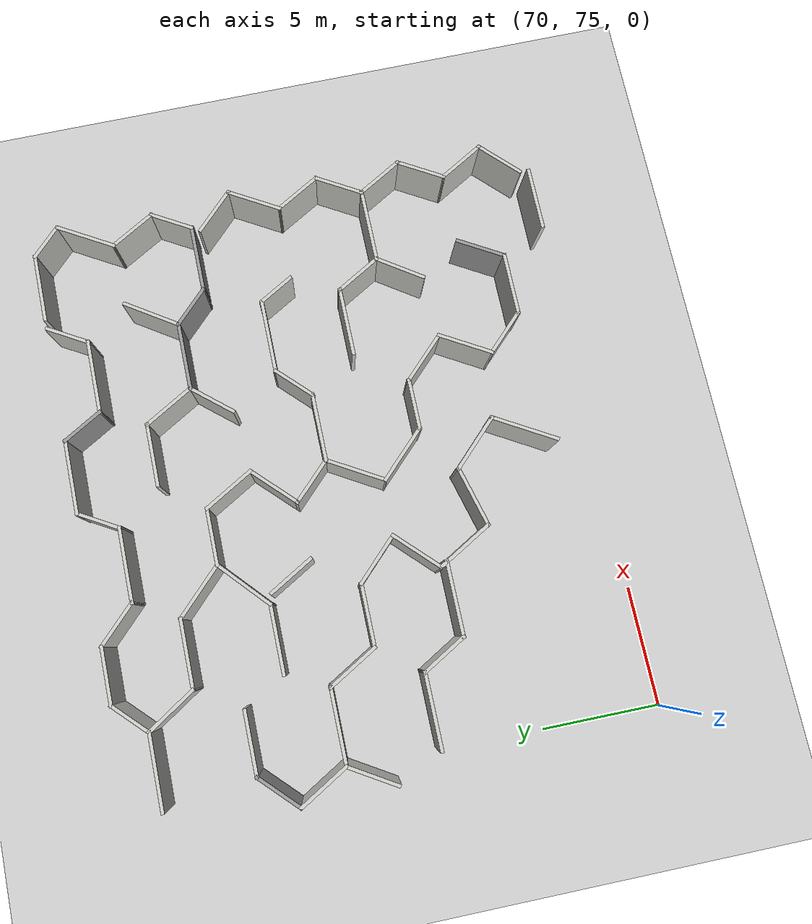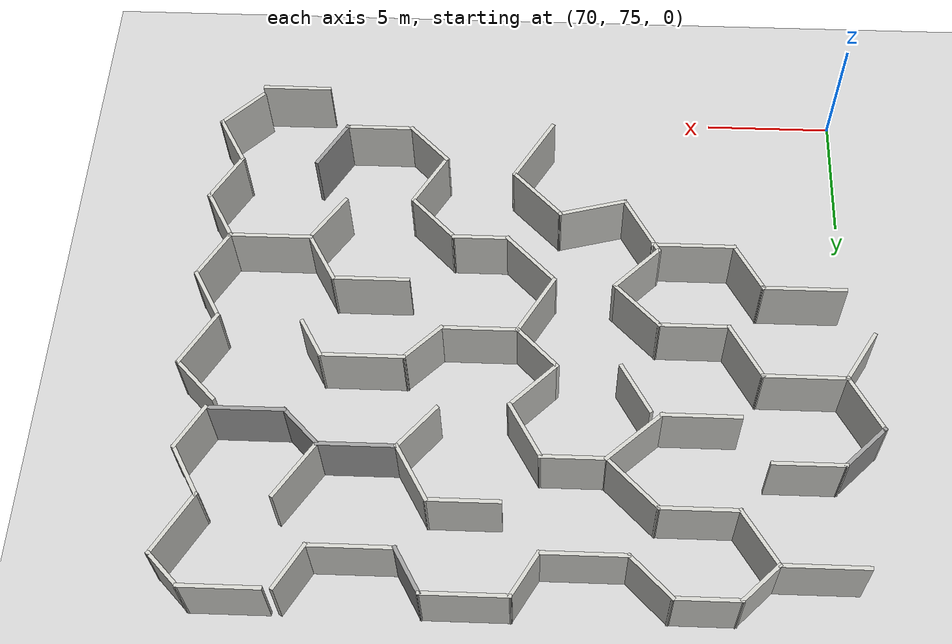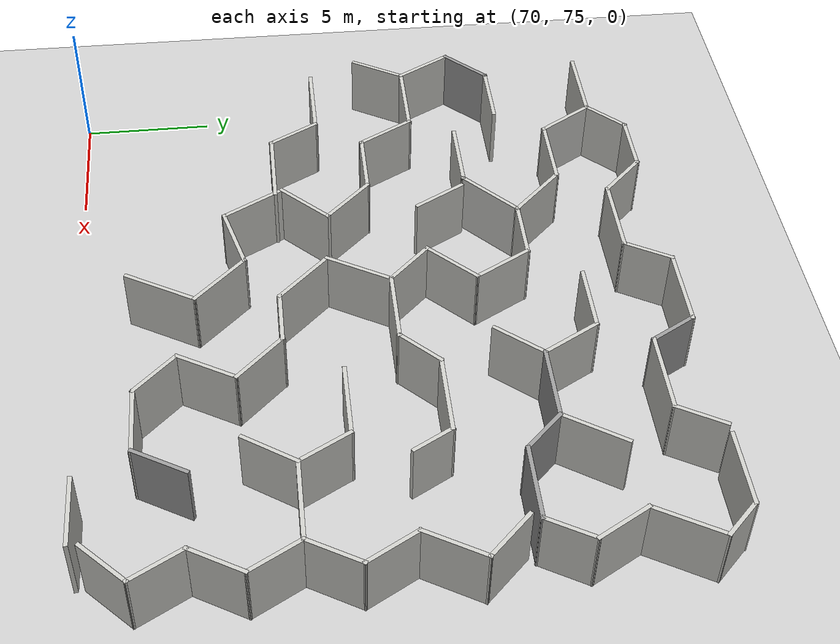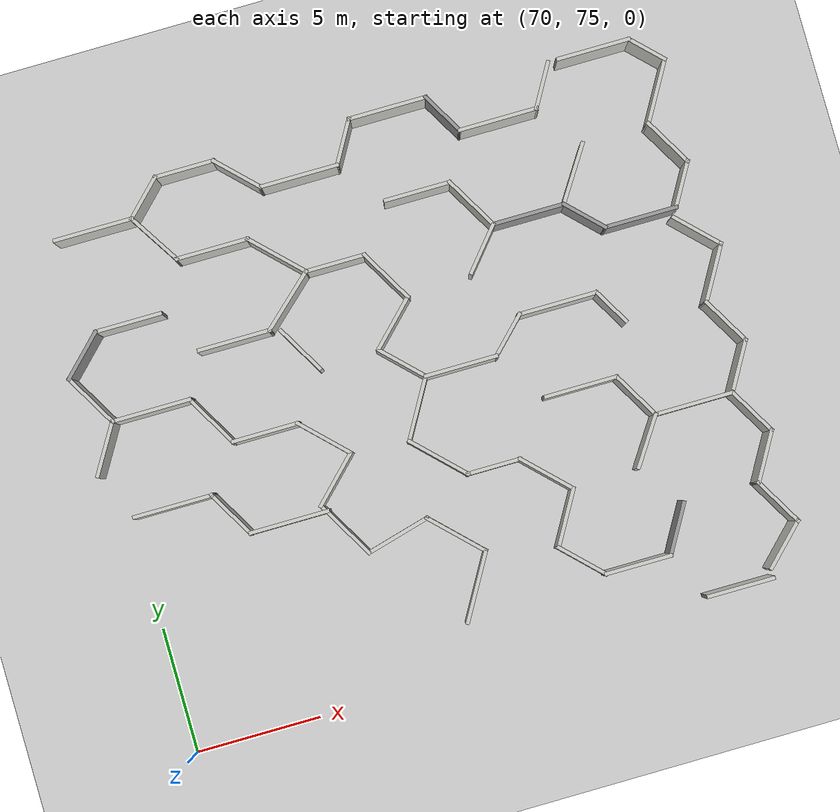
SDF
<sdf version="1.6">
 <world name="default">
  <model name="ground_plane">
   <pose>50 50 0 0 -0 0</pose>
   <static>1</static>
   <link name="link">
    <collision name="collision">
     <geometry><plane><normal>0 0 1</normal><size>100 100</size></plane></geometry>
     <surface><friction><ode><mu>100</mu><mu2>50</mu2></ode></friction></surface>
    </collision>
    <visual name="visual">
     <cast_shadows>0</cast_shadows>
     <geometry><plane><normal>0 0 1</normal><size>100 100</size></plane></geometry>
     <material>
      <script><uri>file://media/materials/scripts/gazebo.material</uri><name>Gazebo/Grey</name></script>
     </material>
    </visual>
   </link>
  </model>
  <model name="maze_1_0">
   <pose>55.5762 81.9377 0 0 -0 3.14</pose>
   <link name="Wall_100">
    <collision name="Wall_100_Collision">
     <geometry><box><size>2.75 0.15 2.5</size></box></geometry>
     <pose>0 0 1.25 0 -0 0</pose>
    </collision>
    <visual name="Wall_100_Visual">
     <pose>0 0 1.25 0 -0 0</pose>
     <geometry><box><size>2.75 0.15 2.5</size></box></geometry>
     <material>
      <script><uri>file://media/materials/scripts/gazebo.material</uri><name>Gazebo/CeilingTiled</name></script>
      <ambient>1 1 1 1</ambient>
     </material>
     <meta><layer>0</layer></meta>
    </visual>
    <pose>-22.8053 -10.8644 0 0 -0 -0.785398</pose>
   </link>
   <link name="Wall_101">
    <collision name="Wall_101_Collision">
     <geometry><box><size>3 0.15 2.5</size></box></geometry>
     <pose>0 0 1.25 0 -0 0</pose>
    </collision>
    <visual name="Wall_101_Visual">
     <pose>0 0 1.25 0 -0 0</pose>
     <geometry><box><size>3 0.15 2.5</size></box></geometry>
     <material>
      <script><uri>file://media/materials/scripts/gazebo.material</uri><name>Gazebo/CeilingTiled</name></script>
      <ambient>1 1 1 1</ambient>
     </material>
     <meta><layer>0</layer></meta>
    </visual>
    <pose>-20.4611 -11.7836 0 0 -0 0</pose>
   </link>
   <link name="Wall_102">
    <collision name="Wall_102_Collision">
     <geometry><box><size>2.50433 0.15 2.5</size></box></geometry>
     <pose>0 0 1.25 0 -0 0</pose>
    </collision>
    <visual name="Wall_102_Visual">
     <pose>0 0 1.25 0 -0 0</pose>
     <geometry><box><size>2.50433 0.15 2.5</size></box></geometry>
     <material>
      <script><uri>file://media/materials/scripts/gazebo.material</uri><name>Gazebo/CeilingTiled</name></script>
      <ambient>1 1 1 1</ambient>
     </material>
     <meta><layer>0</layer></meta>
    </visual>
    <pose>-18.4056 -12.7777 0 0 -0 -1.00558</pose>
   </link>
   <link name="Wall_104">
    <collision name="Wall_104_Collision">
     <geometry><box><size>3 0.15 2.5</size></box></geometry>
     <pose>0 0 1.25 0 -0 0</pose>
    </collision>
    <visual name="Wall_104_Visual">
     <pose>0 0 1.25 0 -0 0</pose>
     <geometry><box><size>3 0.15 2.5</size></box></geometry>
     <material>
      <script><uri>file://media/materials/scripts/gazebo.material</uri><name>Gazebo/CeilingTiled</name></script>
      <ambient>1 1 1 1</ambient>
     </material>
     <meta><layer>0</layer></meta>
    </visual>
    <pose>-20.321 -8.13238 0 0 -0 3.14159</pose>
   </link>
   <link name="Wall_105">
    <collision name="Wall_105_Collision">
     <geometry><box><size>2.83342 0.15 2.5</size></box></geometry>
     <pose>0 0 1.25 0 -0 0</pose>
    </collision>
    <visual name="Wall_105_Visual">
     <pose>0 0 1.25 0 -0 0</pose>
     <geometry><box><size>2.83342 0.15 2.5</size></box></geometry>
     <material>
      <script><uri>file://media/materials/scripts/gazebo.material</uri><name>Gazebo/CeilingTiled</name></script>
      <ambient>1 1 1 1</ambient>
     </material>
     <meta><layer>0</layer></meta>
    </visual>
    <pose>-22.7353 -9.03876 0 0 -0 -2.39989</pose>
   </link>
   <link name="Wall_107">
    <collision name="Wall_107_Collision">
     <geometry><box><size>2.25 0.15 2.5</size></box></geometry>
     <pose>0 0 1.25 0 -0 0</pose>
    </collision>
    <visual name="Wall_107_Visual">
     <pose>0 0 1.25 0 -0 0</pose>
     <geometry><box><size>2.25 0.15 2.5</size></box></geometry>
     <material>
      <script><uri>file://media/materials/scripts/gazebo.material</uri><name>Gazebo/CeilingTiled</name></script>
      <ambient>1 1 1 1</ambient>
     </material>
     <meta><layer>0</layer></meta>
    </visual>
    <pose>-22.6837 -7.08881 0 0 -0 -1.0472</pose>
   </link>
   <link name="Wall_109">
    <collision name="Wall_109_Collision">
     <geometry><box><size>2.75 0.15 2.5</size></box></geometry>
     <pose>0 0 1.25 0 -0 0</pose>
    </collision>
    <visual name="Wall_109_Visual">
     <pose>0 0 1.25 0 -0 0</pose>
     <geometry><box><size>2.75 0.15 2.5</size></box></geometry>
     <material>
      <script><uri>file://media/materials/scripts/gazebo.material</uri><name>Gazebo/CeilingTiled</name></script>
      <ambient>1 1 1 1</ambient>
     </material>
     <meta><layer>0</layer></meta>
    </visual>
    <pose>-16.5382 -9.92253 0 0 -0 0</pose>
   </link>
   <link name="Wall_110">
    <collision name="Wall_110_Collision">
     <geometry><box><size>2.25 0.15 2.5</size></box></geometry>
     <pose>0 0 1.25 0 -0 0</pose>
    </collision>
    <visual name="Wall_110_Visual">
     <pose>0 0 1.25 0 -0 0</pose>
     <geometry><box><size>2.25 0.15 2.5</size></box></geometry>
     <material>
      <script><uri>file://media/materials/scripts/gazebo.material</uri><name>Gazebo/Grey</name></script>
      <ambient>1 1 1 1</ambient>
     </material>
     <meta><layer>0</layer></meta>
    </visual>
    <pose>-14.4957 -9.18007 0 0 -0 0.785398</pose>
   </link>
   <link name="Wall_111">
    <collision name="Wall_111_Collision">
     <geometry><box><size>2.5 0.15 2.5</size></box></geometry>
     <pose>0 0 1.25 0 -0 0</pose>
    </collision>
    <visual name="Wall_111_Visual">
     <pose>0 0 1.25 0 -0 0</pose>
     <geometry><box><size>2.5 0.15 2.5</size></box></geometry>
     <material>
      <script><uri>file://media/materials/scripts/gazebo.material</uri><name>Gazebo/CeilingTiled</name></script>
      <ambient>1 1 1 1</ambient>
     </material>
     <meta><layer>0</layer></meta>
    </visual>
    <pose>-14.3408 -7.42003 0 0 -0 2.0944</pose>
   </link>
   <link name="Wall_112">
    <collision name="Wall_112_Collision">
     <geometry><box><size>3.25 0.15 2.5</size></box></geometry>
     <pose>0 0 1.25 0 -0 0</pose>
    </collision>
    <visual name="Wall_112_Visual">
     <pose>0 0 1.25 0 -0 0</pose>
     <geometry><box><size>3.25 0.15 2.5</size></box></geometry>
     <material>
      <script><uri>file://media/materials/scripts/gazebo.material</uri><name>Gazebo/CeilingTiled</name></script>
      <ambient>1 1 1 1</ambient>
     </material>
     <meta><layer>0</layer></meta>
    </visual>
    <pose>-16.4783 -6.40245 0 0 -0 3.14159</pose>
   </link>
   <link name="Wall_113">
    <collision name="Wall_113_Collision">
     <geometry><box><size>2.5 0.15 2.5</size></box></geometry>
     <pose>0 0 1.25 0 -0 0</pose>
    </collision>
    <visual name="Wall_113_Visual">
     <pose>0 0 1.25 0 -0 0</pose>
     <geometry><box><size>2.5 0.15 2.5</size></box></geometry>
     <material>
      <script><uri>file://media/materials/scripts/gazebo.material</uri><name>Gazebo/CeilingTiled</name></script>
      <ambient>1 1 1 1</ambient>
     </material>
     <meta><layer>0</layer></meta>
    </visual>
    <pose>-18.6158 -5.38487 0 0 -0 2.0944</pose>
   </link>
   <link name="Wall_114">
    <collision name="Wall_114_Collision">
     <geometry><box><size>2.75 0.15 2.5</size></box></geometry>
     <pose>0 0 1.25 0 -0 0</pose>
    </collision>
    <visual name="Wall_114_Visual">
     <pose>0 0 1.25 0 -0 0</pose>
     <geometry><box><size>2.75 0.15 2.5</size></box></geometry>
     <material>
      <script><uri>file://media/materials/scripts/gazebo.material</uri><name>Gazebo/CeilingTiled</name></script>
      <ambient>1 1 1 1</ambient>
     </material>
     <meta><layer>0</layer></meta>
    </visual>
    <pose>-20.5033 -4.36729 0 0 -0 3.14159</pose>
   </link>
   <link name="Wall_115">
    <collision name="Wall_115_Collision">
     <geometry><box><size>2.5 0.15 2.5</size></box></geometry>
     <pose>0 0 1.25 0 -0 0</pose>
    </collision>
    <visual name="Wall_115_Visual">
     <pose>0 0 1.25 0 -0 0</pose>
     <geometry><box><size>2.5 0.15 2.5</size></box></geometry>
     <material>
      <script><uri>file://media/materials/scripts/gazebo.material</uri><name>Gazebo/CeilingTiled</name></script>
      <ambient>1 1 1 1</ambient>
     </material>
     <meta><layer>0</layer></meta>
    </visual>
    <pose>-22.6341 -3.53644 0 0 -0 2.35619</pose>
   </link>
   <link name="Wall_116">
    <collision name="Wall_116_Collision">
     <geometry><box><size>2.5 0.15 2.5</size></box></geometry>
     <pose>0 0 1.25 0 -0 0</pose>
    </collision>
    <visual name="Wall_116_Visual">
     <pose>0 0 1.25 0 -0 0</pose>
     <geometry><box><size>2.5 0.15 2.5</size></box></geometry>
     <material>
      <script><uri>file://media/materials/scripts/gazebo.material</uri><name>Gazebo/CeilingTiled</name></script>
      <ambient>1 1 1 1</ambient>
     </material>
     <meta><layer>0</layer></meta>
    </visual>
    <pose>-22.6341 -1.87474 0 0 -0 0.785398</pose>
   </link>
   <link name="Wall_117">
    <collision name="Wall_117_Collision">
     <geometry><box><size>2.75 0.15 2.5</size></box></geometry>
     <pose>0 0 1.25 0 -0 0</pose>
    </collision>
    <visual name="Wall_117_Visual">
     <pose>0 0 1.25 0 -0 0</pose>
     <geometry><box><size>2.75 0.15 2.5</size></box></geometry>
     <material>
      <script><uri>file://media/materials/scripts/gazebo.material</uri><name>Gazebo/CeilingTiled</name></script>
      <ambient>1 1 1 1</ambient>
     </material>
     <meta><layer>0</layer></meta>
    </visual>
    <pose>-22.4533 0.081949 0 0 -0 2.0944</pose>
   </link>
   <link name="Wall_118">
    <collision name="Wall_118_Collision">
     <geometry><box><size>2.75 0.15 2.5</size></box></geometry>
     <pose>0 0 1.25 0 -0 0</pose>
    </collision>
    <visual name="Wall_118_Visual">
     <pose>0 0 1.25 0 -0 0</pose>
     <geometry><box><size>2.75 0.15 2.5</size></box></geometry>
     <material>
      <script><uri>file://media/materials/scripts/gazebo.material</uri><name>Gazebo/CeilingTiled</name></script>
      <ambient>1 1 1 1</ambient>
     </material>
     <meta><layer>0</layer></meta>
    </visual>
    <pose>-24.359 0.871317 0 0 -0 -2.87979</pose>
   </link>
   <link name="Wall_119">
    <collision name="Wall_119_Collision">
     <geometry><box><size>2.75 0.15 2.5</size></box></geometry>
     <pose>0 0 1.25 0 -0 0</pose>
    </collision>
    <visual name="Wall_119_Visual">
     <pose>0 0 1.25 0 -0 0</pose>
     <geometry><box><size>2.75 0.15 2.5</size></box></geometry>
     <material>
      <script><uri>file://media/materials/scripts/gazebo.material</uri><name>Gazebo/CeilingTiled</name></script>
      <ambient>1 1 1 1</ambient>
     </material>
     <meta><layer>0</layer></meta>
    </visual>
    <pose>-26.5339 1.45409 0 0 -0 2.35619</pose>
   </link>
   <link name="Wall_120">
    <collision name="Wall_120_Collision">
     <geometry><box><size>3 0.15 2.5</size></box></geometry>
     <pose>0 0 1.25 0 -0 0</pose>
    </collision>
    <visual name="Wall_120_Visual">
     <pose>0 0 1.25 0 -0 0</pose>
     <geometry><box><size>3 0.15 2.5</size></box></geometry>
     <material>
      <script><uri>file://media/materials/scripts/gazebo.material</uri><name>Gazebo/CeilingTiled</name></script>
      <ambient>1 1 1 1</ambient>
     </material>
     <meta><layer>0</layer></meta>
    </visual>
    <pose>-26.7407 3.60742 0 0 -0 1.0472</pose>
   </link>
   <link name="Wall_122">
    <collision name="Wall_122_Collision">
     <geometry><box><size>3.25 0.15 2.5</size></box></geometry>
     <pose>0 0 1.25 0 -0 0</pose>
    </collision>
    <visual name="Wall_122_Visual">
     <pose>0 0 1.25 0 -0 0</pose>
     <geometry><box><size>3.25 0.15 2.5</size></box></geometry>
     <material>
      <script><uri>file://media/materials/scripts/gazebo.material</uri><name>Gazebo/CeilingTiled</name></script>
      <ambient>1 1 1 1</ambient>
     </material>
     <meta><layer>0</layer></meta>
    </visual>
    <pose>-16.2961 -2.59917 0 0 -0 3.14159</pose>
   </link>
   <link name="Wall_123">
    <collision name="Wall_123_Collision">
     <geometry><box><size>2.25 0.15 2.5</size></box></geometry>
     <pose>0 0 1.25 0 -0 0</pose>
    </collision>
    <visual name="Wall_123_Visual">
     <pose>0 0 1.25 0 -0 0</pose>
     <geometry><box><size>2.25 0.15 2.5</size></box></geometry>
     <material>
      <script><uri>file://media/materials/scripts/gazebo.material</uri><name>Gazebo/CeilingTiled</name></script>
      <ambient>1 1 1 1</ambient>
     </material>
     <meta><layer>0</layer></meta>
    </visual>
    <pose>-18.3711 -1.68985 0 0 -0 2.0944</pose>
   </link>
   <link name="Wall_124">
    <collision name="Wall_124_Collision">
     <geometry><box><size>3.25 0.15 2.5</size></box></geometry>
     <pose>0 0 1.25 0 -0 0</pose>
    </collision>
    <visual name="Wall_124_Visual">
     <pose>0 0 1.25 0 -0 0</pose>
     <geometry><box><size>3.25 0.15 2.5</size></box></geometry>
     <material>
      <script><uri>file://media/materials/scripts/gazebo.material</uri><name>Gazebo/CeilingTiled</name></script>
      <ambient>1 1 1 1</ambient>
     </material>
     <meta><layer>0</layer></meta>
    </visual>
    <pose>-20.4461 -0.780521 0 0 -0 3.14159</pose>
   </link>
   <link name="Wall_133">
    <collision name="Wall_133_Collision">
     <geometry><box><size>2.33753 0.15 2.5</size></box></geometry>
     <pose>0 0 1.25 0 -0 0</pose>
    </collision>
    <visual name="Wall_133_Visual">
     <pose>0 0 1.25 0 -0 0</pose>
     <geometry><box><size>2.33753 0.15 2.5</size></box></geometry>
     <material>
      <script><uri>file://media/materials/scripts/gazebo.material</uri><name>Gazebo/CeilingTiled</name></script>
      <ambient>1 1 1 1</ambient>
     </material>
     <meta><layer>0</layer></meta>
    </visual>
    <pose>-14.3676 -5.46334 0 0 -0 -2.10906</pose>
   </link>
   <link name="Wall_35">
    <collision name="Wall_35_Collision">
     <geometry><box><size>3.25 0.15 2.5</size></box></geometry>
     <pose>0 0 1.25 0 -0 0</pose>
    </collision>
    <visual name="Wall_35_Visual">
     <pose>0 0 1.25 0 -0 0</pose>
     <geometry><box><size>3.25 0.15 2.5</size></box></geometry>
     <material>
      <script><uri>file://media/materials/scripts/gazebo.material</uri><name>Gazebo/CeilingTiled</name></script>
      <ambient>1 1 1 1</ambient>
     </material>
     <meta><layer>0</layer></meta>
    </visual>
    <pose>-16.2251 -13.7718 0 0 -0 3.14159</pose>
   </link>
   <link name="Wall_36">
    <collision name="Wall_36_Collision">
     <geometry><box><size>2 0.15 2.5</size></box></geometry>
     <pose>0 0 1.25 0 -0 0</pose>
    </collision>
    <visual name="Wall_36_Visual">
     <pose>0 0 1.25 0 -0 0</pose>
     <geometry><box><size>2 0.15 2.5</size></box></geometry>
     <material>
      <script><uri>file://media/materials/scripts/gazebo.material</uri><name>Gazebo/CeilingTiled</name></script>
      <ambient>1 1 1 1</ambient>
     </material>
     <meta><layer>0</layer></meta>
    </visual>
    <pose>-18.4292 -14.4259 0 0 -0 -2.35619</pose>
   </link>
   <link name="Wall_37">
    <collision name="Wall_37_Collision">
     <geometry><box><size>2.5 0.15 2.5</size></box></geometry>
     <pose>0 0 1.25 0 -0 0</pose>
    </collision>
    <visual name="Wall_37_Visual">
     <pose>0 0 1.25 0 -0 0</pose>
     <geometry><box><size>2.5 0.15 2.5</size></box></geometry>
     <material>
      <script><uri>file://media/materials/scripts/gazebo.material</uri><name>Gazebo/CeilingTiled</name></script>
      <ambient>1 1 1 1</ambient>
     </material>
     <meta><layer>0</layer></meta>
    </visual>
    <pose>-20.2583 -15.0799 0 0 -0 3.14159</pose>
   </link>
   <link name="Wall_38">
    <collision name="Wall_38_Collision">
     <geometry><box><size>2.25 0.15 2.5</size></box></geometry>
     <pose>0 0 1.25 0 -0 0</pose>
    </collision>
    <visual name="Wall_38_Visual">
     <pose>0 0 1.25 0 -0 0</pose>
     <geometry><box><size>2.25 0.15 2.5</size></box></geometry>
     <material>
      <script><uri>file://media/materials/scripts/gazebo.material</uri><name>Gazebo/CeilingTiled</name></script>
      <ambient>1 1 1 1</ambient>
     </material>
     <meta><layer>0</layer></meta>
    </visual>
    <pose>-22.1757 -14.3375 0 0 -0 2.35619</pose>
   </link>
   <link name="Wall_39">
    <collision name="Wall_39_Collision">
     <geometry><box><size>3.25 0.15 2.5</size></box></geometry>
     <pose>0 0 1.25 0 -0 0</pose>
    </collision>
    <visual name="Wall_39_Visual">
     <pose>0 0 1.25 0 -0 0</pose>
     <geometry><box><size>3.25 0.15 2.5</size></box></geometry>
     <material>
      <script><uri>file://media/materials/scripts/gazebo.material</uri><name>Gazebo/CeilingTiled</name></script>
      <ambient>1 1 1 1</ambient>
     </material>
     <meta><layer>0</layer></meta>
    </visual>
    <pose>-24.4682 -13.595 0 0 -0 3.14159</pose>
   </link>
   <link name="Wall_40">
    <collision name="Wall_40_Collision">
     <geometry><box><size>2 0.15 2.5</size></box></geometry>
     <pose>0 0 1.25 0 -0 0</pose>
    </collision>
    <visual name="Wall_40_Visual">
     <pose>0 0 1.25 0 -0 0</pose>
     <geometry><box><size>2 0.15 2.5</size></box></geometry>
     <material>
      <script><uri>file://media/materials/scripts/gazebo.material</uri><name>Gazebo/CeilingTiled</name></script>
      <ambient>1 1 1 1</ambient>
     </material>
     <meta><layer>0</layer></meta>
    </visual>
    <pose>-26.4807 -14.3961 0 0 -0 -2.0944</pose>
   </link>
   <link name="Wall_41">
    <collision name="Wall_41_Collision">
     <geometry><box><size>3.25 0.15 2.5</size></box></geometry>
     <pose>0 0 1.25 0 -0 0</pose>
    </collision>
    <visual name="Wall_41_Visual">
     <pose>0 0 1.25 0 -0 0</pose>
     <geometry><box><size>3.25 0.15 2.5</size></box></geometry>
     <material>
      <script><uri>file://media/materials/scripts/gazebo.material</uri><name>Gazebo/CeilingTiled</name></script>
      <ambient>1 1 1 1</ambient>
     </material>
     <meta><layer>0</layer></meta>
    </visual>
    <pose>-28.4932 -15.1972 0 0 -0 3.14159</pose>
   </link>
   <link name="Wall_42">
    <collision name="Wall_42_Collision">
     <geometry><box><size>2 0.15 2.5</size></box></geometry>
     <pose>0 0 1.25 0 -0 0</pose>
    </collision>
    <visual name="Wall_42_Visual">
     <pose>0 0 1.25 0 -0 0</pose>
     <geometry><box><size>2 0.15 2.5</size></box></geometry>
     <material>
      <script><uri>file://media/materials/scripts/gazebo.material</uri><name>Gazebo/Grey</name></script>
      <ambient>1 1 1 1</ambient>
     </material>
     <meta><layer>0</layer></meta>
    </visual>
    <pose>-30.5057 -14.3961 0 0 -0 2.0944</pose>
   </link>
   <link name="Wall_43">
    <collision name="Wall_43_Collision">
     <geometry><box><size>3.25 0.15 2.5</size></box></geometry>
     <pose>0 0 1.25 0 -0 0</pose>
    </collision>
    <visual name="Wall_43_Visual">
     <pose>0 0 1.25 0 -0 0</pose>
     <geometry><box><size>3.25 0.15 2.5</size></box></geometry>
     <material>
      <script><uri>file://media/materials/scripts/gazebo.material</uri><name>Gazebo/CeilingTiled</name></script>
      <ambient>1 1 1 1</ambient>
     </material>
     <meta><layer>0</layer></meta>
    </visual>
    <pose>-32.5182 -13.595 0 0 -0 3.14159</pose>
   </link>
   <link name="Wall_44">
    <collision name="Wall_44_Collision">
     <geometry><box><size>2 0.15 2.5</size></box></geometry>
     <pose>0 0 1.25 0 -0 0</pose>
    </collision>
    <visual name="Wall_44_Visual">
     <pose>0 0 1.25 0 -0 0</pose>
     <geometry><box><size>2 0.15 2.5</size></box></geometry>
     <material>
      <script><uri>file://media/materials/scripts/gazebo.material</uri><name>Gazebo/CeilingTiled</name></script>
      <ambient>1 1 1 1</ambient>
     </material>
     <meta><layer>0</layer></meta>
    </visual>
    <pose>-34.5307 -14.3961 0 0 -0 -2.0944</pose>
   </link>
   <link name="Wall_46">
    <collision name="Wall_46_Collision">
     <geometry><box><size>3 0.15 2.5</size></box></geometry>
     <pose>0 0 1.25 0 -0 0</pose>
    </collision>
    <visual name="Wall_46_Visual">
     <pose>0 0 1.25 0 -0 0</pose>
     <geometry><box><size>3 0.15 2.5</size></box></geometry>
     <material>
      <script><uri>file://media/materials/scripts/gazebo.material</uri><name>Gazebo/CeilingTiled</name></script>
      <ambient>1 1 1 1</ambient>
     </material>
     <meta><layer>0</layer></meta>
    </visual>
    <pose>-36.8393 -15.2116 0 0 -0 3.14159</pose>
   </link>
   <link name="Wall_47">
    <collision name="Wall_47_Collision">
     <geometry><box><size>1.75 0.15 2.5</size></box></geometry>
     <pose>0 0 1.25 0 -0 0</pose>
    </collision>
    <visual name="Wall_47_Visual">
     <pose>0 0 1.25 0 -0 0</pose>
     <geometry><box><size>1.75 0.15 2.5</size></box></geometry>
     <material>
      <script><uri>file://media/materials/scripts/gazebo.material</uri><name>Gazebo/CeilingTiled</name></script>
      <ambient>1 1 1 1</ambient>
     </material>
     <meta><layer>0</layer></meta>
    </visual>
    <pose>-38.8299 -14.6459 0 0 -0 2.35619</pose>
   </link>
   <link name="Wall_48">
    <collision name="Wall_48_Collision">
     <geometry><box><size>2.75 0.15 2.5</size></box></geometry>
     <pose>0 0 1.25 0 -0 0</pose>
    </collision>
    <visual name="Wall_48_Visual">
     <pose>0 0 1.25 0 -0 0</pose>
     <geometry><box><size>2.75 0.15 2.5</size></box></geometry>
     <material>
      <script><uri>file://media/materials/scripts/gazebo.material</uri><name>Gazebo/CeilingTiled</name></script>
      <ambient>1 1 1 1</ambient>
     </material>
     <meta><layer>0</layer></meta>
    </visual>
    <pose>-38.7456 -12.9544 0 0 -0 1.0472</pose>
   </link>
   <link name="Wall_49">
    <collision name="Wall_49_Collision">
     <geometry><box><size>2.25 0.15 2.5</size></box></geometry>
     <pose>0 0 1.25 0 -0 0</pose>
    </collision>
    <visual name="Wall_49_Visual">
     <pose>0 0 1.25 0 -0 0</pose>
     <geometry><box><size>2.25 0.15 2.5</size></box></geometry>
     <material>
      <script><uri>file://media/materials/scripts/gazebo.material</uri><name>Gazebo/CeilingTiled</name></script>
      <ambient>1 1 1 1</ambient>
     </material>
     <meta><layer>0</layer></meta>
    </visual>
    <pose>-38.6206 -10.9193 0 0 -0 2.0944</pose>
   </link>
   <link name="Wall_50">
    <collision name="Wall_50_Collision">
     <geometry><box><size>2 0.15 2.5</size></box></geometry>
     <pose>0 0 1.25 0 -0 0</pose>
    </collision>
    <visual name="Wall_50_Visual">
     <pose>0 0 1.25 0 -0 0</pose>
     <geometry><box><size>2 0.15 2.5</size></box></geometry>
     <material>
      <script><uri>file://media/materials/scripts/gazebo.material</uri><name>Gazebo/CeilingTiled</name></script>
      <ambient>1 1 1 1</ambient>
     </material>
     <meta><layer>0</layer></meta>
    </visual>
    <pose>-38.6831 -9.20886 0 0 -0 1.0472</pose>
   </link>
   <link name="Wall_51">
    <collision name="Wall_51_Collision">
     <geometry><box><size>3 0.15 2.5</size></box></geometry>
     <pose>0 0 1.25 0 -0 0</pose>
    </collision>
    <visual name="Wall_51_Visual">
     <pose>0 0 1.25 0 -0 0</pose>
     <geometry><box><size>3 0.15 2.5</size></box></geometry>
     <material>
      <script><uri>file://media/materials/scripts/gazebo.material</uri><name>Gazebo/Grey</name></script>
      <ambient>1 1 1 1</ambient>
     </material>
     <meta><layer>0</layer></meta>
    </visual>
    <pose>-36.7956 -8.40778 0 0 -0 0</pose>
   </link>
   <link name="Wall_52">
    <collision name="Wall_52_Collision">
     <geometry><box><size>2 0.15 2.5</size></box></geometry>
     <pose>0 0 1.25 0 -0 0</pose>
    </collision>
    <visual name="Wall_52_Visual">
     <pose>0 0 1.25 0 -0 0</pose>
     <geometry><box><size>2 0.15 2.5</size></box></geometry>
     <material>
      <script><uri>file://media/materials/scripts/gazebo.material</uri><name>Gazebo/Grey</name></script>
      <ambient>1 1 1 1</ambient>
     </material>
     <meta><layer>0</layer></meta>
    </visual>
    <pose>-34.7166 -9.06186 0 0 -0 -0.785398</pose>
   </link>
   <link name="Wall_53">
    <collision name="Wall_53_Collision">
     <geometry><box><size>3 0.15 2.5</size></box></geometry>
     <pose>0 0 1.25 0 -0 0</pose>
    </collision>
    <visual name="Wall_53_Visual">
     <pose>0 0 1.25 0 -0 0</pose>
     <geometry><box><size>3 0.15 2.5</size></box></geometry>
     <material>
      <script><uri>file://media/materials/scripts/gazebo.material</uri><name>Gazebo/Grey</name></script>
      <ambient>1 1 1 1</ambient>
     </material>
     <meta><layer>0</layer></meta>
    </visual>
    <pose>-32.6375 -9.71593 0 0 -0 0</pose>
   </link>
   <link name="Wall_54">
    <collision name="Wall_54_Collision">
     <geometry><box><size>2.5 0.15 2.5</size></box></geometry>
     <pose>0 0 1.25 0 -0 0</pose>
    </collision>
    <visual name="Wall_54_Visual">
     <pose>0 0 1.25 0 -0 0</pose>
     <geometry><box><size>2.5 0.15 2.5</size></box></geometry>
     <material>
      <script><uri>file://media/materials/scripts/gazebo.material</uri><name>Gazebo/CeilingTiled</name></script>
      <ambient>1 1 1 1</ambient>
     </material>
     <meta><layer>0</layer></meta>
    </visual>
    <pose>-30.625 -10.7335 0 0 -0 -1.0472</pose>
   </link>
   <link name="Wall_55">
    <collision name="Wall_55_Collision">
     <geometry><box><size>2.75 0.15 2.5</size></box></geometry>
     <pose>0 0 1.25 0 -0 0</pose>
    </collision>
    <visual name="Wall_55_Visual">
     <pose>0 0 1.25 0 -0 0</pose>
     <geometry><box><size>2.75 0.15 2.5</size></box></geometry>
     <material>
      <script><uri>file://media/materials/scripts/gazebo.material</uri><name>Gazebo/CeilingTiled</name></script>
      <ambient>1 1 1 1</ambient>
     </material>
     <meta><layer>0</layer></meta>
    </visual>
    <pose>-28.7375 -11.7511 0 0 -0 0</pose>
   </link>
   <link name="Wall_57">
    <collision name="Wall_57_Collision">
     <geometry><box><size>2.2189 0.15 2.5</size></box></geometry>
     <pose>0 0 1.25 0 -0 0</pose>
    </collision>
    <visual name="Wall_57_Visual">
     <pose>0 0 1.25 0 -0 0</pose>
     <geometry><box><size>2.2189 0.15 2.5</size></box></geometry>
     <material>
      <script><uri>file://media/materials/scripts/gazebo.material</uri><name>Gazebo/CeilingTiled</name></script>
      <ambient>1 1 1 1</ambient>
     </material>
     <meta><layer>0</layer></meta>
    </visual>
    <pose>-30.5468 -8.92415 0 0 -0 -2.26992</pose>
   </link>
   <link name="Wall_59">
    <collision name="Wall_59_Collision">
     <geometry><box><size>2.62909 0.15 2.5</size></box></geometry>
     <pose>0 0 1.25 0 -0 0</pose>
    </collision>
    <visual name="Wall_59_Visual">
     <pose>0 0 1.25 0 -0 0</pose>
     <geometry><box><size>2.62909 0.15 2.5</size></box></geometry>
     <material>
      <script><uri>file://media/materials/scripts/gazebo.material</uri><name>Gazebo/CeilingTiled</name></script>
      <ambient>1 1 1 1</ambient>
     </material>
     <meta><layer>0</layer></meta>
    </visual>
    <pose>-34.7384 -10.755 0 0 -0 0.994084</pose>
   </link>
   <link name="Wall_61">
    <collision name="Wall_61_Collision">
     <geometry><box><size>2.25 0.15 2.5</size></box></geometry>
     <pose>0 0 1.25 0 -0 0</pose>
    </collision>
    <visual name="Wall_61_Visual">
     <pose>0 0 1.25 0 -0 0</pose>
     <geometry><box><size>2.25 0.15 2.5</size></box></geometry>
     <material>
      <script><uri>file://media/materials/scripts/gazebo.material</uri><name>Gazebo/CeilingTiled</name></script>
      <ambient>1 1 1 1</ambient>
     </material>
     <meta><layer>0</layer></meta>
    </visual>
    <pose>-38.7606 -7.30854 0 0 -0 2.35619</pose>
   </link>
   <link name="Wall_62">
    <collision name="Wall_62_Collision">
     <geometry><box><size>2.5 0.15 2.5</size></box></geometry>
     <pose>0 0 1.25 0 -0 0</pose>
    </collision>
    <visual name="Wall_62_Visual">
     <pose>0 0 1.25 0 -0 0</pose>
     <geometry><box><size>2.5 0.15 2.5</size></box></geometry>
     <material>
      <script><uri>file://media/materials/scripts/gazebo.material</uri><name>Gazebo/CeilingTiled</name></script>
      <ambient>1 1 1 1</ambient>
     </material>
     <meta><layer>0</layer></meta>
    </visual>
    <pose>-38.9155 -5.5485 0 0 -0 1.0472</pose>
   </link>
   <link name="Wall_63">
    <collision name="Wall_63_Collision">
     <geometry><box><size>2.25 0.15 2.5</size></box></geometry>
     <pose>0 0 1.25 0 -0 0</pose>
    </collision>
    <visual name="Wall_63_Visual">
     <pose>0 0 1.25 0 -0 0</pose>
     <geometry><box><size>2.25 0.15 2.5</size></box></geometry>
     <material>
      <script><uri>file://media/materials/scripts/gazebo.material</uri><name>Gazebo/CeilingTiled</name></script>
      <ambient>1 1 1 1</ambient>
     </material>
     <meta><layer>0</layer></meta>
    </visual>
    <pose>-38.853 -3.6216 0 0 -0 2.0944</pose>
   </link>
   <link name="Wall_64">
    <collision name="Wall_64_Collision">
     <geometry><box><size>2.25 0.15 2.5</size></box></geometry>
     <pose>0 0 1.25 0 -0 0</pose>
    </collision>
    <visual name="Wall_64_Visual">
     <pose>0 0 1.25 0 -0 0</pose>
     <geometry><box><size>2.25 0.15 2.5</size></box></geometry>
     <material>
      <script><uri>file://media/materials/scripts/gazebo.material</uri><name>Gazebo/CeilingTiled</name></script>
      <ambient>1 1 1 1</ambient>
     </material>
     <meta><layer>0</layer></meta>
    </visual>
    <pose>-38.853 -1.80294 0 0 -0 1.0472</pose>
   </link>
   <link name="Wall_65">
    <collision name="Wall_65_Collision">
     <geometry><box><size>3.25 0.15 2.5</size></box></geometry>
     <pose>0 0 1.25 0 -0 0</pose>
    </collision>
    <visual name="Wall_65_Visual">
     <pose>0 0 1.25 0 -0 0</pose>
     <geometry><box><size>3.25 0.15 2.5</size></box></geometry>
     <material>
      <script><uri>file://media/materials/scripts/gazebo.material</uri><name>Gazebo/CeilingTiled</name></script>
      <ambient>1 1 1 1</ambient>
     </material>
     <meta><layer>0</layer></meta>
    </visual>
    <pose>-36.778 -0.893615 0 0 -0 0</pose>
   </link>
   <link name="Wall_66">
    <collision name="Wall_66_Collision">
     <geometry><box><size>2.25 0.15 2.5</size></box></geometry>
     <pose>0 0 1.25 0 -0 0</pose>
    </collision>
    <visual name="Wall_66_Visual">
     <pose>0 0 1.25 0 -0 0</pose>
     <geometry><box><size>2.25 0.15 2.5</size></box></geometry>
     <material>
      <script><uri>file://media/materials/scripts/gazebo.material</uri><name>Gazebo/CeilingTiled</name></script>
      <ambient>1 1 1 1</ambient>
     </material>
     <meta><layer>0</layer></meta>
    </visual>
    <pose>-34.703 -1.80294 0 0 -0 -1.0472</pose>
   </link>
   <link name="Wall_67">
    <collision name="Wall_67_Collision">
     <geometry><box><size>3 0.15 2.5</size></box></geometry>
     <pose>0 0 1.25 0 -0 0</pose>
    </collision>
    <visual name="Wall_67_Visual">
     <pose>0 0 1.25 0 -0 0</pose>
     <geometry><box><size>3 0.15 2.5</size></box></geometry>
     <material>
      <script><uri>file://media/materials/scripts/gazebo.material</uri><name>Gazebo/CeilingTiled</name></script>
      <ambient>1 1 1 1</ambient>
     </material>
     <meta><layer>0</layer></meta>
    </visual>
    <pose>-32.753 -2.71227 0 0 -0 0</pose>
   </link>
   <link name="Wall_69">
    <collision name="Wall_69_Collision">
     <geometry><box><size>2.3062 0.15 2.5</size></box></geometry>
     <pose>0 0 1.25 0 -0 0</pose>
    </collision>
    <visual name="Wall_69_Visual">
     <pose>0 0 1.25 0 -0 0</pose>
     <geometry><box><size>2.3062 0.15 2.5</size></box></geometry>
     <material>
      <script><uri>file://media/materials/scripts/gazebo.material</uri><name>Gazebo/CeilingTiled</name></script>
      <ambient>1 1 1 1</ambient>
     </material>
     <meta><layer>0</layer></meta>
    </visual>
    <pose>-34.6295 0.003073 0 0 -0 -2.15938</pose>
   </link>
   <link name="Wall_71">
    <collision name="Wall_71_Collision">
     <geometry><box><size>2.25 0.15 2.5</size></box></geometry>
     <pose>0 0 1.25 0 -0 0</pose>
    </collision>
    <visual name="Wall_71_Visual">
     <pose>0 0 1.25 0 -0 0</pose>
     <geometry><box><size>2.25 0.15 2.5</size></box></geometry>
     <material>
      <script><uri>file://media/materials/scripts/gazebo.material</uri><name>Gazebo/CeilingTiled</name></script>
      <ambient>1 1 1 1</ambient>
     </material>
     <meta><layer>0</layer></meta>
    </visual>
    <pose>-38.853 0.015712 0 0 -0 2.0944</pose>
   </link>
   <link name="Wall_72">
    <collision name="Wall_72_Collision">
     <geometry><box><size>2.25 0.15 2.5</size></box></geometry>
     <pose>0 0 1.25 0 -0 0</pose>
    </collision>
    <visual name="Wall_72_Visual">
     <pose>0 0 1.25 0 -0 0</pose>
     <geometry><box><size>2.25 0.15 2.5</size></box></geometry>
     <material>
      <script><uri>file://media/materials/scripts/gazebo.material</uri><name>Gazebo/CeilingTiled</name></script>
      <ambient>1 1 1 1</ambient>
     </material>
     <meta><layer>0</layer></meta>
    </visual>
    <pose>-38.853 1.83437 0 0 -0 1.0472</pose>
   </link>
   <link name="Wall_73">
    <collision name="Wall_73_Collision">
     <geometry><box><size>2.25 0.15 2.5</size></box></geometry>
     <pose>0 0 1.25 0 -0 0</pose>
    </collision>
    <visual name="Wall_73_Visual">
     <pose>0 0 1.25 0 -0 0</pose>
     <geometry><box><size>2.25 0.15 2.5</size></box></geometry>
     <material>
      <script><uri>file://media/materials/scripts/gazebo.material</uri><name>Gazebo/CeilingTiled</name></script>
      <ambient>1 1 1 1</ambient>
     </material>
     <meta><layer>0</layer></meta>
    </visual>
    <pose>-38.853 3.65302 0 0 -0 2.0944</pose>
   </link>
   <link name="Wall_74">
    <collision name="Wall_74_Collision">
     <geometry><box><size>2.25 0.15 2.5</size></box></geometry>
     <pose>0 0 1.25 0 -0 0</pose>
    </collision>
    <visual name="Wall_74_Visual">
     <pose>0 0 1.25 0 -0 0</pose>
     <geometry><box><size>2.25 0.15 2.5</size></box></geometry>
     <material>
      <script><uri>file://media/materials/scripts/gazebo.material</uri><name>Gazebo/CeilingTiled</name></script>
      <ambient>1 1 1 1</ambient>
     </material>
     <meta><layer>0</layer></meta>
    </visual>
    <pose>-38.6356 5.30481 0 0 -0 0.785398</pose>
   </link>
   <link name="Wall_81">
    <collision name="Wall_81_Collision">
     <geometry><box><size>2.75 0.15 2.5</size></box></geometry>
     <pose>0 0 1.25 0 -0 0</pose>
    </collision>
    <visual name="Wall_81_Visual">
     <pose>0 0 1.25 0 -0 0</pose>
     <geometry><box><size>2.75 0.15 2.5</size></box></geometry>
     <material>
      <script><uri>file://media/materials/scripts/gazebo.material</uri><name>Gazebo/CeilingTiled</name></script>
      <ambient>1 1 1 1</ambient>
     </material>
     <meta><layer>0</layer></meta>
    </visual>
    <pose>-36.5515 6.43296 0 0 -0 3.14159</pose>
   </link>
   <link name="Wall_83">
    <collision name="Wall_83_Collision">
     <geometry><box><size>2.25 0.15 2.5</size></box></geometry>
     <pose>0 0 1.25 0 -0 0</pose>
    </collision>
    <visual name="Wall_83_Visual">
     <pose>0 0 1.25 0 -0 0</pose>
     <geometry><box><size>2.25 0.15 2.5</size></box></geometry>
     <material>
      <script><uri>file://media/materials/scripts/gazebo.material</uri><name>Gazebo/Grey</name></script>
      <ambient>1 1 1 1</ambient>
     </material>
     <meta><layer>0</layer></meta>
    </visual>
    <pose>-34.8079 3.59924 0 0 -0 1.0472</pose>
   </link>
   <link name="Wall_84">
    <collision name="Wall_84_Collision">
     <geometry><box><size>2.75 0.15 2.5</size></box></geometry>
     <pose>0 0 1.25 0 -0 0</pose>
    </collision>
    <visual name="Wall_84_Visual">
     <pose>0 0 1.25 0 -0 0</pose>
     <geometry><box><size>2.75 0.15 2.5</size></box></geometry>
     <material>
      <script><uri>file://media/materials/scripts/gazebo.material</uri><name>Gazebo/CeilingTiled</name></script>
      <ambient>1 1 1 1</ambient>
     </material>
     <meta><layer>0</layer></meta>
    </visual>
    <pose>-32.9829 4.50857 0 0 -0 0</pose>
   </link>
   <link name="Wall_85">
    <collision name="Wall_85_Collision">
     <geometry><box><size>2.25 0.15 2.5</size></box></geometry>
     <pose>0 0 1.25 0 -0 0</pose>
    </collision>
    <visual name="Wall_85_Visual">
     <pose>0 0 1.25 0 -0 0</pose>
     <geometry><box><size>2.25 0.15 2.5</size></box></geometry>
     <material>
      <script><uri>file://media/materials/scripts/gazebo.material</uri><name>Gazebo/CeilingTiled</name></script>
      <ambient>1 1 1 1</ambient>
     </material>
     <meta><layer>0</layer></meta>
    </visual>
    <pose>-30.9404 3.76611 0 0 -0 -0.785398</pose>
   </link>
   <link name="Wall_86">
    <collision name="Wall_86_Collision">
     <geometry><box><size>2.5 0.15 2.5</size></box></geometry>
     <pose>0 0 1.25 0 -0 0</pose>
    </collision>
    <visual name="Wall_86_Visual">
     <pose>0 0 1.25 0 -0 0</pose>
     <geometry><box><size>2.5 0.15 2.5</size></box></geometry>
     <material>
      <script><uri>file://media/materials/scripts/gazebo.material</uri><name>Gazebo/CeilingTiled</name></script>
      <ambient>1 1 1 1</ambient>
     </material>
     <meta><layer>0</layer></meta>
    </visual>
    <pose>-30.7855 2.00606 0 0 -0 -2.0944</pose>
   </link>
   <link name="Wall_87">
    <collision name="Wall_87_Collision">
     <geometry><box><size>2.5 0.15 2.5</size></box></geometry>
     <pose>0 0 1.25 0 -0 0</pose>
    </collision>
    <visual name="Wall_87_Visual">
     <pose>0 0 1.25 0 -0 0</pose>
     <geometry><box><size>2.5 0.15 2.5</size></box></geometry>
     <material>
      <script><uri>file://media/materials/scripts/gazebo.material</uri><name>Gazebo/CeilingTiled</name></script>
      <ambient>1 1 1 1</ambient>
     </material>
     <meta><layer>0</layer></meta>
    </visual>
    <pose>-30.5421 0.157634 0 0 -0 -0.785398</pose>
   </link>
   <link name="Wall_88">
    <collision name="Wall_88_Collision">
     <geometry><box><size>2.25 0.15 2.5</size></box></geometry>
     <pose>0 0 1.25 0 -0 0</pose>
    </collision>
    <visual name="Wall_88_Visual">
     <pose>0 0 1.25 0 -0 0</pose>
     <geometry><box><size>2.25 0.15 2.5</size></box></geometry>
     <material>
      <script><uri>file://media/materials/scripts/gazebo.material</uri><name>Gazebo/CeilingTiled</name></script>
      <ambient>1 1 1 1</ambient>
     </material>
     <meta><layer>0</layer></meta>
    </visual>
    <pose>-28.6613 -0.673216 0 0 -0 0</pose>
   </link>
   <link name="Wall_89">
    <collision name="Wall_89_Collision">
     <geometry><box><size>2.75 0.15 2.5</size></box></geometry>
     <pose>0 0 1.25 0 -0 0</pose>
    </collision>
    <visual name="Wall_89_Visual">
     <pose>0 0 1.25 0 -0 0</pose>
     <geometry><box><size>2.75 0.15 2.5</size></box></geometry>
     <material>
      <script><uri>file://media/materials/scripts/gazebo.material</uri><name>Gazebo/CeilingTiled</name></script>
      <ambient>1 1 1 1</ambient>
     </material>
     <meta><layer>0</layer></meta>
    </visual>
    <pose>-26.692 -1.59245 0 0 -0 -0.785398</pose>
   </link>
   <link name="Wall_90">
    <collision name="Wall_90_Collision">
     <geometry><box><size>2.75 0.15 2.5</size></box></geometry>
     <pose>0 0 1.25 0 -0 0</pose>
    </collision>
    <visual name="Wall_90_Visual">
     <pose>0 0 1.25 0 -0 0</pose>
     <geometry><box><size>2.75 0.15 2.5</size></box></geometry>
     <material>
      <script><uri>file://media/materials/scripts/gazebo.material</uri><name>Gazebo/CeilingTiled</name></script>
      <ambient>1 1 1 1</ambient>
     </material>
     <meta><layer>0</layer></meta>
    </visual>
    <pose>-26.4228 -3.63753 0 0 -0 -2.0944</pose>
   </link>
   <link name="Wall_91">
    <collision name="Wall_91_Collision">
     <geometry><box><size>3 0.15 2.5</size></box></geometry>
     <pose>0 0 1.25 0 -0 0</pose>
    </collision>
    <visual name="Wall_91_Visual">
     <pose>0 0 1.25 0 -0 0</pose>
     <geometry><box><size>3 0.15 2.5</size></box></geometry>
     <material>
      <script><uri>file://media/materials/scripts/gazebo.material</uri><name>Gazebo/CeilingTiled</name></script>
      <ambient>1 1 1 1</ambient>
     </material>
     <meta><layer>0</layer></meta>
    </visual>
    <pose>-28.4978 -4.76336 0 0 -0 3.14159</pose>
   </link>
   <link name="Wall_92">
    <collision name="Wall_92_Collision">
     <geometry><box><size>2 0.15 2.5</size></box></geometry>
     <pose>0 0 1.25 0 -0 0</pose>
    </collision>
    <visual name="Wall_92_Visual">
     <pose>0 0 1.25 0 -0 0</pose>
     <geometry><box><size>2 0.15 2.5</size></box></geometry>
     <material>
      <script><uri>file://media/materials/scripts/gazebo.material</uri><name>Gazebo/CeilingTiled</name></script>
      <ambient>1 1 1 1</ambient>
     </material>
     <meta><layer>0</layer></meta>
    </visual>
    <pose>-30.5769 -5.41743 0 0 -0 -2.35619</pose>
   </link>
   <link name="Wall_93">
    <collision name="Wall_93_Collision">
     <geometry><box><size>3.25 0.15 2.5</size></box></geometry>
     <pose>0 0 1.25 0 -0 0</pose>
    </collision>
    <visual name="Wall_93_Visual">
     <pose>0 0 1.25 0 -0 0</pose>
     <geometry><box><size>3.25 0.15 2.5</size></box></geometry>
     <material>
      <script><uri>file://media/materials/scripts/gazebo.material</uri><name>Gazebo/CeilingTiled</name></script>
      <ambient>1 1 1 1</ambient>
     </material>
     <meta><layer>0</layer></meta>
    </visual>
    <pose>-32.7809 -6.07151 0 0 -0 3.14159</pose>
   </link>
   <link name="Wall_94">
    <collision name="Wall_94_Collision">
     <geometry><box><size>1.75 0.15 2.5</size></box></geometry>
     <pose>0 0 1.25 0 -0 0</pose>
    </collision>
    <visual name="Wall_94_Visual">
     <pose>0 0 1.25 0 -0 0</pose>
     <geometry><box><size>1.75 0.15 2.5</size></box></geometry>
     <material>
      <script><uri>file://media/materials/scripts/gazebo.material</uri><name>Gazebo/CeilingTiled</name></script>
      <ambient>1 1 1 1</ambient>
     </material>
     <meta><layer>0</layer></meta>
    </visual>
    <pose>-34.7309 -5.37869 0 0 -0 2.0944</pose>
   </link>
   <link name="Wall_96">
    <collision name="Wall_96_Collision">
     <geometry><box><size>2.25 0.15 2.5</size></box></geometry>
     <pose>0 0 1.25 0 -0 0</pose>
    </collision>
    <visual name="Wall_96_Visual">
     <pose>0 0 1.25 0 -0 0</pose>
     <geometry><box><size>2.25 0.15 2.5</size></box></geometry>
     <material>
      <script><uri>file://media/materials/scripts/gazebo.material</uri><name>Gazebo/CeilingTiled</name></script>
      <ambient>1 1 1 1</ambient>
     </material>
     <meta><layer>0</layer></meta>
    </visual>
    <pose>-26.3303 -5.50582 0 0 -0 -0.785398</pose>
   </link>
   <link name="Wall_97">
    <collision name="Wall_97_Collision">
     <geometry><box><size>2.5 0.15 2.5</size></box></geometry>
     <pose>0 0 1.25 0 -0 0</pose>
    </collision>
    <visual name="Wall_97_Visual">
     <pose>0 0 1.25 0 -0 0</pose>
     <geometry><box><size>2.5 0.15 2.5</size></box></geometry>
     <material>
      <script><uri>file://media/materials/scripts/gazebo.material</uri><name>Gazebo/CeilingTiled</name></script>
      <ambient>1 1 1 1</ambient>
     </material>
     <meta><layer>0</layer></meta>
    </visual>
    <pose>-26.4187 -7.07913 0 0 -0 -2.35619</pose>
   </link>
   <link name="Wall_98">
    <collision name="Wall_98_Collision">
     <geometry><box><size>2.5 0.15 2.5</size></box></geometry>
     <pose>0 0 1.25 0 -0 0</pose>
    </collision>
    <visual name="Wall_98_Visual">
     <pose>0 0 1.25 0 -0 0</pose>
     <geometry><box><size>2.5 0.15 2.5</size></box></geometry>
     <material>
      <script><uri>file://media/materials/scripts/gazebo.material</uri><name>Gazebo/CeilingTiled</name></script>
      <ambient>1 1 1 1</ambient>
     </material>
     <meta><layer>0</layer></meta>
    </visual>
    <pose>-26.6621 -8.92756 0 0 -0 -1.0472</pose>
   </link>
   <link name="Wall_99">
    <collision name="Wall_99_Collision">
     <geometry><box><size>2.5 0.15 2.5</size></box></geometry>
     <pose>0 0 1.25 0 -0 0</pose>
    </collision>
    <visual name="Wall_99_Visual">
     <pose>0 0 1.25 0 -0 0</pose>
     <geometry><box><size>2.5 0.15 2.5</size></box></geometry>
     <material>
      <script><uri>file://media/materials/scripts/gazebo.material</uri><name>Gazebo/CeilingTiled</name></script>
      <ambient>1 1 1 1</ambient>
     </material>
     <meta><layer>0</layer></meta>
    </visual>
    <pose>-24.8996 -9.94515 0 0 -0 0</pose>
   </link>
   <static>1</static>
  </model>
 </world>
</sdf>
